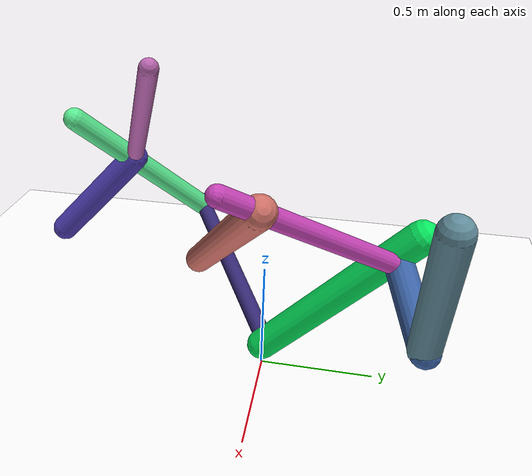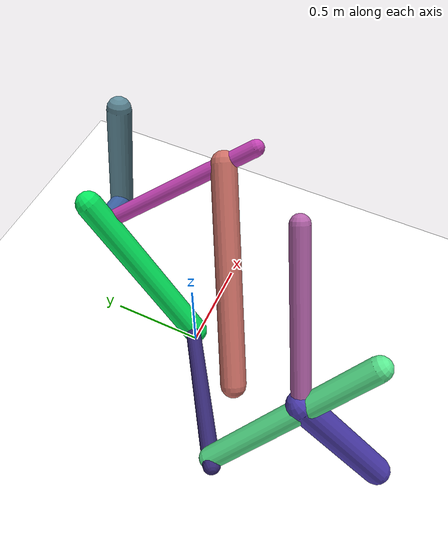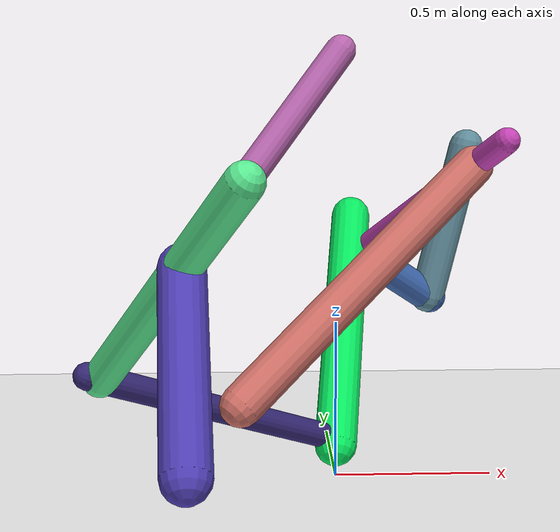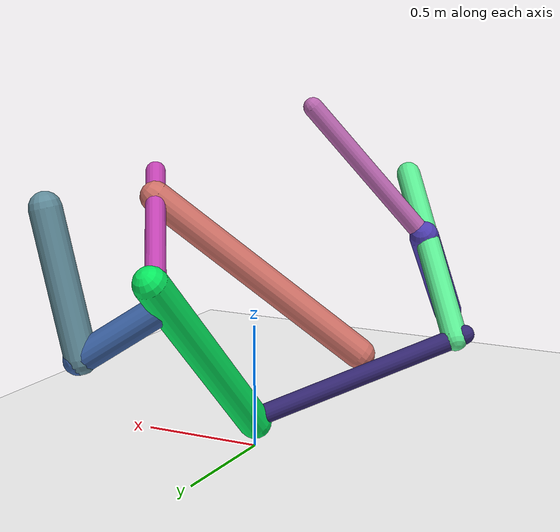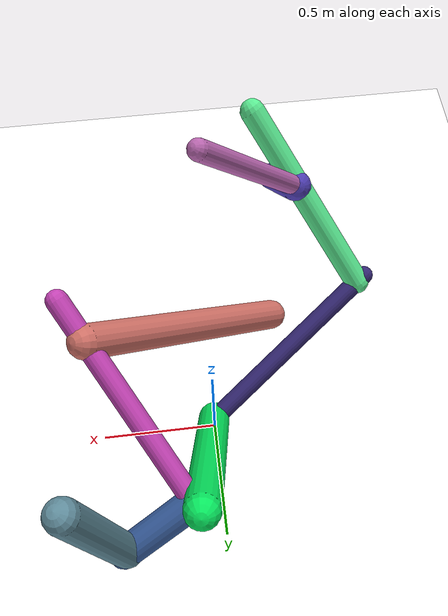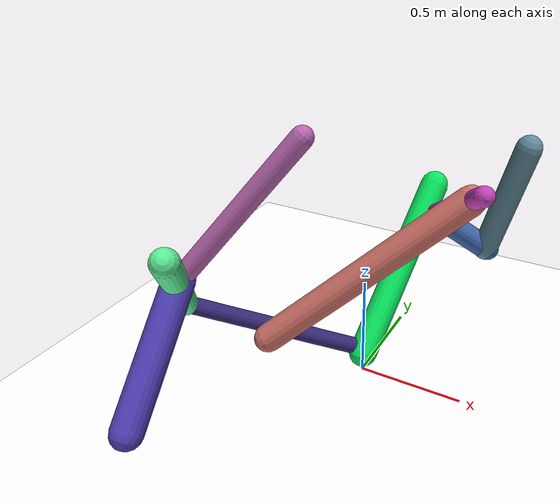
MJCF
<mujoco model="morphology">
  <option timestep="0.01"/>
  <default>
    <default class="/"/>
    <default class="0/"/>
    <default class="0/1/"/>
    <default class="0/1/2/"/>
    <default class="0/1/2/3/"/>
    <default class="0/1/2/3/4/"/>
    <default class="0/5/"/>
    <default class="0/5/6/"/>
    <default class="0/5/7/"/>
    <default class="0/5/7/8/"/>
  </default>
  <asset>
    <texture name="texplane" type="2d" builtin="checker" rgb1="0.10000000000000001 0.20000000000000001 0.29999999999999999" rgb2="0.20000000000000001 0.29999999999999999 0.40000000000000002" width="300" height="300"/>
    <material name="MatPlane" class="/" texture="texplane" texrepeat="20 20" specular="1" shininess="1" reflectance="0.5"/>
  </asset>
  <worldbody>
    <light name="//unnamed_light_0" class="/" directional="true" pos="0 0 1.5" dir="0 0 -1.3" cutoff="100" exponent="1" diffuse="1 1 1" specular="0.10000000000000001 0.10000000000000001 0.10000000000000001"/>
    <geom name="ground" class="/" type="plane" size="15 15 0.5" material="MatPlane" rgba="1 1 1 1"/>
    <site name="body" class="/" size="9.9999999999999995e-07 9.9999999999999995e-07 9.9999999999999995e-07" pos="0 0 0.10000000000000001"/>
    <body pos="0 0 0.10000000000000001" name="0/">
      <freejoint name="0/"/>
      <geom name="0/geom" class="0/" type="capsule" contype="1" conaffinity="1" condim="3" size="0.067791914363728098" rgba="0.02365000805588735 0.91632380358193988 0.37287469121501693 1" friction="0.59999999999999998 0.10000000000000001 0.10000000000000001" fromto="0 0 0 0.091817806140963576 0.60097885843797627 0.67795678175428398"/>
      <site name="0/end0" class="0/" size="0.0050000000000000001" pos="0.091817806140963576 0.60097885843797627 0.67795678175428398"/>
      <site name="0/attach1" class="0/" size="9.9999999999999995e-07 9.9999999999999995e-07 9.9999999999999995e-07" pos="0.0023980237266032016 0.015695883209283241 0.017706330793423378"/>
      <body pos="0.0023980237266032016 0.015695883209283241 0.017706330793423378" name="0/1/">
        <joint name="0/1/joint/" class="0/" type="hinge" axis="0 0 1" limited="true" range="-64.877538379221363 64.877538379221363"/>
        <geom name="0/1/geom" class="0/1/" type="capsule" contype="1" conaffinity="1" condim="3" size="0.039989482944919948" rgba="0.20892985421419852 0.15649331112296228 0.45595655278870784 1" friction="0.59999999999999998 0.10000000000000001 0.10000000000000001" fromto="0 0 0 -0.71993626422296286 -0.46742243895083757 0.32481320814570269"/>
        <site name="0/1/end1" class="0/1/" size="0.0050000000000000001" pos="-0.71993626422296286 -0.46742243895083757 0.32481320814570269"/>
        <site name="0/1/attach2" class="0/1/" size="9.9999999999999995e-07 9.9999999999999995e-07 9.9999999999999995e-07" pos="-0.68759824279963166 -0.44642680698214893 0.31022328261259513"/>
        <body pos="-0.68759824279963166 -0.44642680698214893 0.31022328261259513" name="0/1/2/">
          <joint name="0/1/2/joint/" class="0/1/" type="hinge" axis="0 0.57064977419258844 0.82119354309075498" limited="true" range="-51.966050940644656 51.966050940644656"/>
          <geom name="0/1/2/geom" class="0/1/2/" type="capsule" contype="1" conaffinity="1" condim="3" size="0.05141829298877891" rgba="0.35487123257651121 0.92532599260628967 0.57438488116774167 1" friction="0.59999999999999998 0.10000000000000001 0.10000000000000001" fromto="0 0 0 0.41145592279796328 -0.49798451873707966 0.58241595462952578"/>
          <site name="0/1/2/end2" class="0/1/2/" size="0.0050000000000000001" pos="0.41145592279796328 -0.49798451873707966 0.58241595462952578"/>
          <site name="0/1/2/attach3" class="0/1/2/" size="9.9999999999999995e-07 9.9999999999999995e-07 9.9999999999999995e-07" pos="0.23828914060103973 -0.28840100829159454 0.33729833406517884"/>
          <body pos="0.23828914060103973 -0.28840100829159454 0.33729833406517884" name="0/1/2/3/">
            <joint name="0/1/2/3/joint/" class="0/1/2/" type="hinge" axis="-5.5511151231257827e-17 0.7600486240489186 0.64986620860092847" limited="true" range="-47.256335916417498 47.256335916417498"/>
            <geom name="0/1/2/3/geom" class="0/1/2/3/" type="capsule" contype="1" conaffinity="1" condim="3" size="0.041128234176471878" rgba="0.72768571360748813 0.40072888230265269 0.68849102209353397 1" friction="0.59999999999999998 0.10000000000000001 0.10000000000000001" fromto="0 0 0 0.42466197094120717 0.23829854961497499 0.56135883518978513"/>
            <site name="0/1/2/3/end3" class="0/1/2/3/" size="0.0050000000000000001" pos="0.42466197094120717 0.23829854961497499 0.56135883518978513"/>
            <site name="0/1/2/3/attach4" class="0/1/2/3/" size="9.9999999999999995e-07 9.9999999999999995e-07 9.9999999999999995e-07" pos="0.011928659709497094 0.0066937529191124371 0.015768444028687656"/>
            <body pos="0.011928659709497094 0.0066937529191124371 0.015768444028687656" name="0/1/2/3/4/">
              <joint name="0/1/2/3/4/joint/" class="0/1/2/3/" type="hinge" axis="5.5511151231257827e-17 -0.92049549866246583 0.39075316625990159" limited="true" range="-64.177058299672922 64.177058299672922"/>
              <geom name="0/1/2/3/4/geom" class="0/1/2/3/4/" type="capsule" contype="1" conaffinity="1" condim="3" size="0.063028807330811593" rgba="0.30931507153235227 0.24320341234945519 0.70576618383588086 1" friction="0.59999999999999998 0.10000000000000001 0.10000000000000001" fromto="0 0 0 0.027419688775604634 -0.39768355038291087 -0.41713582192251047"/>
              <site name="0/1/2/3/4/end4" class="0/1/2/3/4/" size="0.0050000000000000001" pos="0.027419688775604634 -0.39768355038291087 -0.41713582192251047"/>
            </body>
          </body>
        </body>
      </body>
      <site name="0/attach5" class="0/" size="9.9999999999999995e-07 9.9999999999999995e-07 9.9999999999999995e-07" pos="0.079146182785557864 0.51803876153568051 0.5843930891471637"/>
      <body pos="0.079146182785557864 0.51803876153568051 0.5843930891471637" name="0/5/">
        <joint name="0/5/joint/" class="0/" type="hinge" axis="0 0 1" limited="true" range="-55.510145721065854 55.510145721065854"/>
        <geom name="0/5/geom" class="0/5/" type="capsule" contype="1" conaffinity="1" condim="3" size="0.058722417375872582" rgba="0.23761293279945106 0.39564811435153713 0.66064519899263996 1" friction="0.59999999999999998 0.10000000000000001 0.10000000000000001" fromto="0 0 0 0.31052431089940447 0.11894223477860433 -0.21304430345831349"/>
        <site name="0/5/end5" class="0/5/" size="0.0050000000000000001" pos="0.31052431089940447 0.11894223477860433 -0.21304430345831349"/>
        <site name="0/5/attach6" class="0/5/" size="9.9999999999999995e-07 9.9999999999999995e-07 9.9999999999999995e-07" pos="0.3015982606496716 0.11552322915751695 -0.2069203251051201"/>
        <body pos="0.3015982606496716 0.11552322915751695 -0.2069203251051201" name="0/5/6/">
          <joint name="0/5/6/joint/" class="0/5/" type="hinge" axis="-0.61784477153256234 0.38329907135926383 -0.68654909524738428" limited="true" range="-42.753007397133153 42.753007397133153"/>
          <geom name="0/5/6/geom" class="0/5/6/" type="capsule" contype="1" conaffinity="1" condim="3" size="0.062267090942245563" rgba="0.37869792137122571 0.5529432555246705 0.61309060569734031 1" friction="0.59999999999999998 0.10000000000000001 0.10000000000000001" fromto="0 0 0 0.13431504429338825 0.0017222658734151741 0.5486435657621096"/>
          <site name="0/5/6/end6" class="0/5/6/" size="0.0050000000000000001" pos="0.13431504429338825 0.0017222658734151741 0.5486435657621096"/>
        </body>
        <site name="0/5/attach7" class="0/5/" size="9.9999999999999995e-07 9.9999999999999995e-07 9.9999999999999995e-07" pos="0.039405851196394205 0.015093890687903802 -0.027035539008207984"/>
        <body pos="0.039405851196394205 0.015093890687903802 -0.027035539008207984" name="0/5/7/">
          <joint name="0/5/7/joint/" class="0/5/" type="hinge" axis="-0.61784477153256234 0.38329907135926383 -0.68654909524738428" limited="true" range="-39.826738906558674 39.826738906558674"/>
          <geom name="0/5/7/geom" class="0/5/7/" type="capsule" contype="1" conaffinity="1" condim="3" size="0.041104166466902826" rgba="0.77709948683284347 0.26232742765996042 0.71431229917954742 1" friction="0.59999999999999998 0.10000000000000001 0.10000000000000001" fromto="0 0 0 0.39072702554529348 -0.6293835932757228 0.41562810713398668"/>
          <site name="0/5/7/end7" class="0/5/7/" size="0.0050000000000000001" pos="0.39072702554529348 -0.6293835932757228 0.41562810713398668"/>
          <site name="0/5/7/attach8" class="0/5/7/" size="9.9999999999999995e-07 9.9999999999999995e-07 9.9999999999999995e-07" pos="0.31310322393672535 -0.50434707420735059 0.33305733106317875"/>
          <body pos="0.31310322393672535 -0.50434707420735059 0.33305733106317875" name="0/5/7/8/">
            <joint name="0/5/7/8/joint/" class="0/5/7/" type="hinge" axis="2.7755575615628914e-17 0.55105916419288903 0.83446617520366528" limited="true" range="-38.625546594541582 38.625546594541582"/>
            <geom name="0/5/7/8/geom" class="0/5/7/8/" type="capsule" contype="1" conaffinity="1" condim="3" size="0.064021253775815329" rgba="0.81796463694396859 0.44525889883202752 0.40721615491196772 1" friction="0.59999999999999998 0.10000000000000001 0.10000000000000001" fromto="0 0 0 -0.72732167846038365 -0.39440324706087304 -0.65996523152294617"/>
            <site name="0/5/7/8/end8" class="0/5/7/8/" size="0.0050000000000000001" pos="-0.72732167846038365 -0.39440324706087304 -0.65996523152294617"/>
          </body>
        </body>
      </body>
      <camera name="0/iso" class="0/" mode="trackcom" pos="-2.2999999999999998 -2.2999999999999998 1" xyaxes="0.45000000000000001 -0.45000000000000001 0 0.29999999999999999 0.14999999999999999 0.93999999999999995"/>
    </body>
  </worldbody>
  <actuator>
    <motor name="0/1/motor" class="0/1/" ctrllimited="true" ctrlrange="-1 1" gear="81" joint="0/1/joint/"/>
    <motor name="0/1/2/motor" class="0/1/2/" ctrllimited="true" ctrlrange="-1 1" gear="51" joint="0/1/2/joint/"/>
    <motor name="0/1/2/3/motor" class="0/1/2/3/" ctrllimited="true" ctrlrange="-1 1" gear="58" joint="0/1/2/3/joint/"/>
    <motor name="0/1/2/3/4/motor" class="0/1/2/3/4/" ctrllimited="true" ctrlrange="-1 1" gear="74" joint="0/1/2/3/4/joint/"/>
    <motor name="0/5/motor" class="0/5/" ctrllimited="true" ctrlrange="-1 1" gear="61" joint="0/5/joint/"/>
    <motor name="0/5/6/motor" class="0/5/6/" ctrllimited="true" ctrlrange="-1 1" gear="87" joint="0/5/6/joint/"/>
    <motor name="0/5/7/motor" class="0/5/7/" ctrllimited="true" ctrlrange="-1 1" gear="92" joint="0/5/7/joint/"/>
    <motor name="0/5/7/8/motor" class="0/5/7/8/" ctrllimited="true" ctrlrange="-1 1" gear="72" joint="0/5/7/8/joint/"/>
  </actuator>
  <sensor>
    <subtreelinvel name="velocity" body="0/"/>
  </sensor>
</mujoco>
